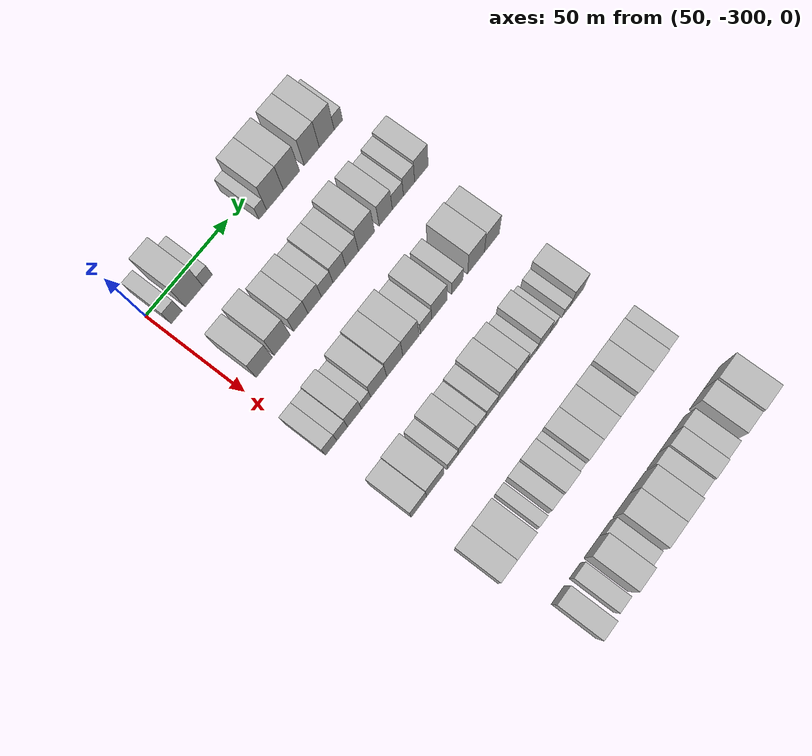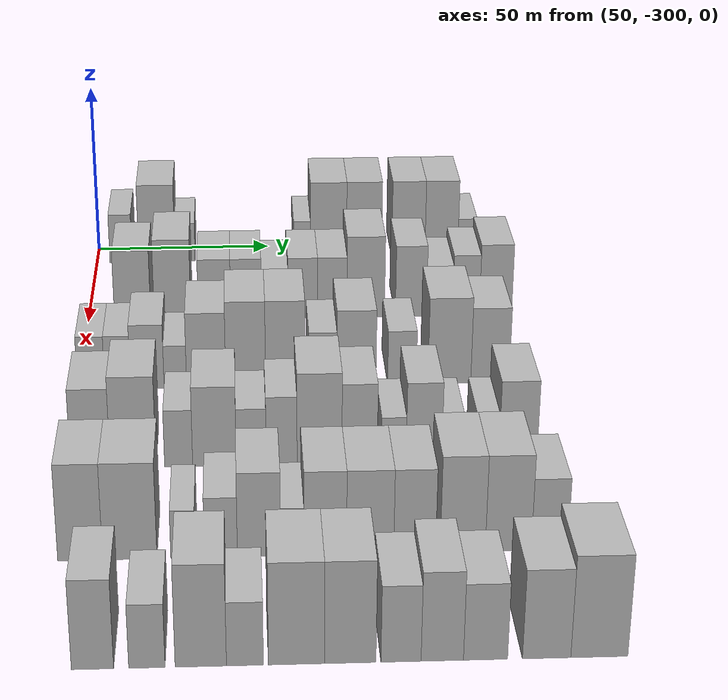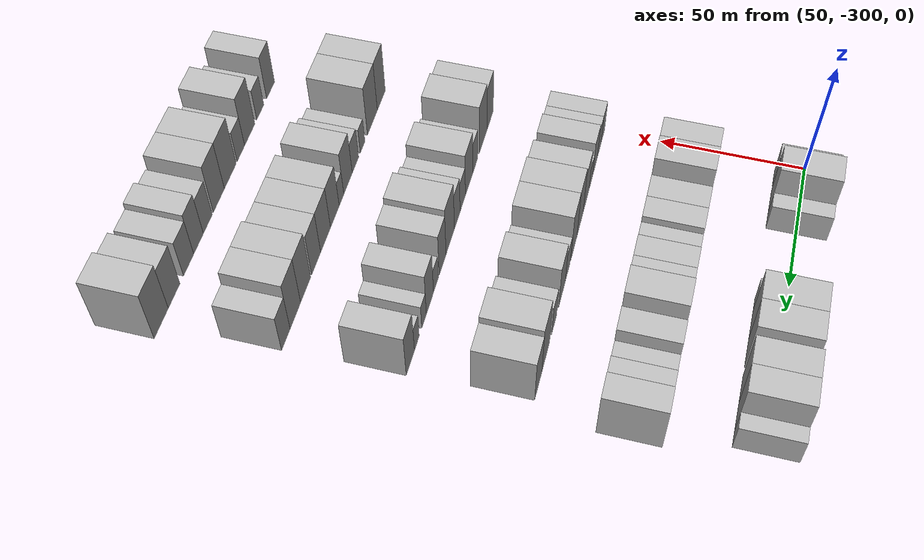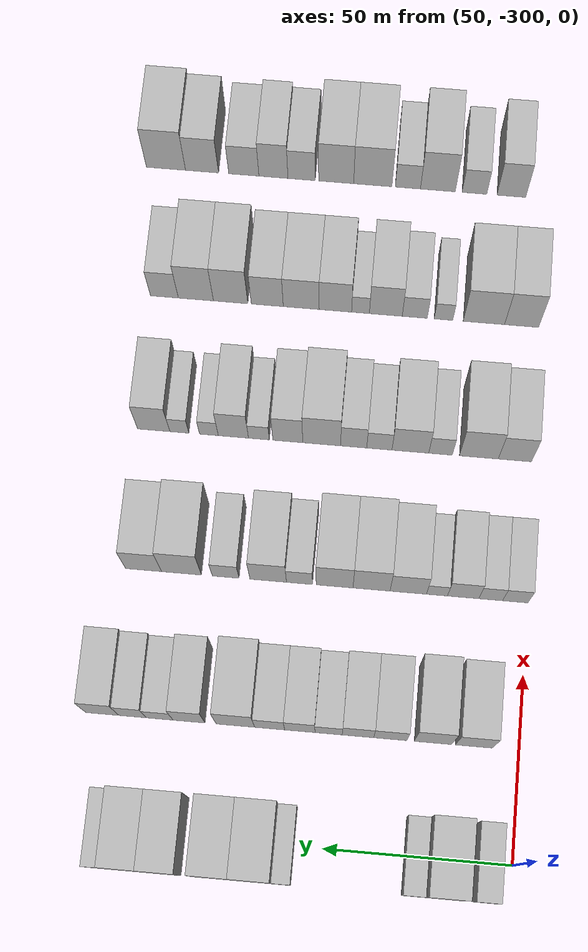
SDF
<sdf version="1.6">
 <world name="default">
  <model name="building_37">
   <static>1</static>
   <pose>50.0000 -293.0768 0 0.000000 0.000000 0.000000</pose>
   <link name="link">
    <pose>0 0 7.50 0 0 0</pose>
    <collision name="collision"><geometry><box><size>20.0000 6.4604 15.0000</size></box></geometry></collision>
    <visual name="visual">
     <cast_shadows>0</cast_shadows>
     <geometry><box><size>20.0000 6.4604 15.0000</size></box></geometry>
     <material>
      <script>
       <uri>model://HANNAS_wall/materials/scripts</uri>
       <uri>model://HANNAS_wall/materials/textures</uri>
       <name>vrc/HANNAS_wall</name>
      </script>
     </material>
    </visual>
   </link>
  </model>
  <model name="building_38">
   <static>1</static>
   <pose>50.0000 -282.5672 0 0.000000 0.000000 0.000000</pose>
   <link name="link">
    <pose>0 0 12.00 0 0 0</pose>
    <collision name="collision"><geometry><box><size>20.0000 10.5588 24.0000</size></box></geometry></collision>
    <visual name="visual">
     <cast_shadows>0</cast_shadows>
     <geometry><box><size>20.0000 10.5588 24.0000</size></box></geometry>
     <material>
      <script>
       <uri>model://HANNAS_wall/materials/scripts</uri>
       <uri>model://HANNAS_wall/materials/textures</uri>
       <name>vrc/HANNAS_wall</name>
      </script>
     </material>
    </visual>
   </link>
  </model>
  <model name="building_39">
   <static>1</static>
   <pose>50.0000 -274.3519 0 0.000000 0.000000 0.000000</pose>
   <link name="link">
    <pose>0 0 6.00 0 0 0</pose>
    <collision name="collision"><geometry><box><size>20.0000 5.8718 12.0000</size></box></geometry></collision>
    <visual name="visual">
     <cast_shadows>0</cast_shadows>
     <geometry><box><size>20.0000 5.8718 12.0000</size></box></geometry>
     <material>
      <script>
       <uri>model://HANNAS_wall/materials/scripts</uri>
       <uri>model://HANNAS_wall/materials/textures</uri>
       <name>vrc/HANNAS_wall</name>
      </script>
     </material>
    </visual>
   </link>
  </model>
  <model name="building_40">
   <static>1</static>
   <pose>50.0000 -240.0656 0 0.000000 0.000000 0.000000</pose>
   <link name="link">
    <pose>0 0 6.00 0 0 0</pose>
    <collision name="collision"><geometry><box><size>20.0000 4.9003 12.0000</size></box></geometry></collision>
    <visual name="visual">
     <cast_shadows>0</cast_shadows>
     <geometry><box><size>20.0000 4.9003 12.0000</size></box></geometry>
     <material>
      <script>
       <uri>model://HANNAS_wall/materials/scripts</uri>
       <uri>model://HANNAS_wall/materials/textures</uri>
       <name>vrc/HANNAS_wall</name>
      </script>
     </material>
    </visual>
   </link>
  </model>
  <model name="building_41">
   <static>1</static>
   <pose>50.0000 -232.3175 0 0.000000 0.000000 0.000000</pose>
   <link name="link">
    <pose>0 0 12.00 0 0 0</pose>
    <collision name="collision"><geometry><box><size>20.0000 10.5959 24.0000</size></box></geometry></collision>
    <visual name="visual">
     <cast_shadows>0</cast_shadows>
     <geometry><box><size>20.0000 10.5959 24.0000</size></box></geometry>
     <material>
      <script>
       <uri>model://HANNAS_wall/materials/scripts</uri>
       <uri>model://HANNAS_wall/materials/textures</uri>
       <name>vrc/HANNAS_wall</name>
      </script>
     </material>
    </visual>
   </link>
  </model>
  <model name="building_42">
   <static>1</static>
   <pose>50.0000 -221.8709 0 0.000000 0.000000 0.000000</pose>
   <link name="link">
    <pose>0 0 12.00 0 0 0</pose>
    <collision name="collision"><geometry><box><size>20.0000 10.2973 24.0000</size></box></geometry></collision>
    <visual name="visual">
     <cast_shadows>0</cast_shadows>
     <geometry><box><size>20.0000 10.2973 24.0000</size></box></geometry>
     <material>
      <script>
       <uri>model://HANNAS_wall/materials/scripts</uri>
       <uri>model://HANNAS_wall/materials/textures</uri>
       <name>vrc/HANNAS_wall</name>
      </script>
     </material>
    </visual>
   </link>
  </model>
  <model name="building_43">
   <static>1</static>
   <pose>50.0000 -208.8454 0 0.000000 0.000000 0.000000</pose>
   <link name="link">
    <pose>0 0 12.00 0 0 0</pose>
    <collision name="collision"><geometry><box><size>20.0000 9.7536 24.0000</size></box></geometry></collision>
    <visual name="visual">
     <cast_shadows>0</cast_shadows>
     <geometry><box><size>20.0000 9.7536 24.0000</size></box></geometry>
     <material>
      <script>
       <uri>model://HANNAS_wall/materials/scripts</uri>
       <uri>model://HANNAS_wall/materials/textures</uri>
       <name>vrc/HANNAS_wall</name>
      </script>
     </material>
    </visual>
   </link>
  </model>
  <model name="building_44">
   <static>1</static>
   <pose>50.0000 -199.1187 0 0.000000 0.000000 0.000000</pose>
   <link name="link">
    <pose>0 0 12.00 0 0 0</pose>
    <collision name="collision"><geometry><box><size>20.0000 9.6998 24.0000</size></box></geometry></collision>
    <visual name="visual">
     <cast_shadows>0</cast_shadows>
     <geometry><box><size>20.0000 9.6998 24.0000</size></box></geometry>
     <material>
      <script>
       <uri>model://HANNAS_wall/materials/scripts</uri>
       <uri>model://HANNAS_wall/materials/textures</uri>
       <name>vrc/HANNAS_wall</name>
      </script>
     </material>
    </visual>
   </link>
  </model>
  <model name="building_45">
   <static>1</static>
   <pose>50.0000 -191.5245 0 0.000000 0.000000 0.000000</pose>
   <link name="link">
    <pose>0 0 6.00 0 0 0</pose>
    <collision name="collision"><geometry><box><size>20.0000 5.4886 12.0000</size></box></geometry></collision>
    <visual name="visual">
     <cast_shadows>0</cast_shadows>
     <geometry><box><size>20.0000 5.4886 12.0000</size></box></geometry>
     <material>
      <script>
       <uri>model://HANNAS_wall/materials/scripts</uri>
       <uri>model://HANNAS_wall/materials/textures</uri>
       <name>vrc/HANNAS_wall</name>
      </script>
     </material>
    </visual>
   </link>
  </model>
  <model name="building_177">
   <static>1</static>
   <pose>90.0000 -287.9412 0 0.000000 0.000000 0.000000</pose>
   <link name="link">
    <pose>0 0 10.50 0 0 0</pose>
    <collision name="collision"><geometry><box><size>20.0000 9.8852 21.0000</size></box></geometry></collision>
    <visual name="visual">
     <cast_shadows>0</cast_shadows>
     <geometry><box><size>20.0000 9.8852 21.0000</size></box></geometry>
     <material>
      <script>
       <uri>model://HANNAS_wall/materials/scripts</uri>
       <uri>model://HANNAS_wall/materials/textures</uri>
       <name>vrc/HANNAS_wall</name>
      </script>
     </material>
    </visual>
   </link>
  </model>
  <model name="building_178">
   <static>1</static>
   <pose>90.0000 -276.9962 0 0.000000 0.000000 0.000000</pose>
   <link name="link">
    <pose>0 0 12.00 0 0 0</pose>
    <collision name="collision"><geometry><box><size>20.0000 10.0049 24.0000</size></box></geometry></collision>
    <visual name="visual">
     <cast_shadows>0</cast_shadows>
     <geometry><box><size>20.0000 10.0049 24.0000</size></box></geometry>
     <material>
      <script>
       <uri>model://HANNAS_wall/materials/scripts</uri>
       <uri>model://HANNAS_wall/materials/textures</uri>
       <name>vrc/HANNAS_wall</name>
      </script>
     </material>
    </visual>
   </link>
  </model>
  <model name="building_179">
   <static>1</static>
   <pose>90.0000 -265.5433 0 0.000000 0.000000 0.000000</pose>
   <link name="link">
    <pose>0 0 9.00 0 0 0</pose>
    <collision name="collision"><geometry><box><size>20.0000 8.9009 18.0000</size></box></geometry></collision>
    <visual name="visual">
     <cast_shadows>0</cast_shadows>
     <geometry><box><size>20.0000 8.9009 18.0000</size></box></geometry>
     <material>
      <script>
       <uri>model://HANNAS_wall/materials/scripts</uri>
       <uri>model://HANNAS_wall/materials/textures</uri>
       <name>vrc/HANNAS_wall</name>
      </script>
     </material>
    </visual>
   </link>
  </model>
  <model name="building_180">
   <static>1</static>
   <pose>90.0000 -256.8800 0 0.000000 0.000000 0.000000</pose>
   <link name="link">
    <pose>0 0 9.00 0 0 0</pose>
    <collision name="collision"><geometry><box><size>20.0000 8.4257 18.0000</size></box></geometry></collision>
    <visual name="visual">
     <cast_shadows>0</cast_shadows>
     <geometry><box><size>20.0000 8.4257 18.0000</size></box></geometry>
     <material>
      <script>
       <uri>model://HANNAS_wall/materials/scripts</uri>
       <uri>model://HANNAS_wall/materials/textures</uri>
       <name>vrc/HANNAS_wall</name>
      </script>
     </material>
    </visual>
   </link>
  </model>
  <model name="building_181">
   <static>1</static>
   <pose>90.0000 -249.0174 0 0.000000 0.000000 0.000000</pose>
   <link name="link">
    <pose>0 0 7.50 0 0 0</pose>
    <collision name="collision"><geometry><box><size>20.0000 7.2996 15.0000</size></box></geometry></collision>
    <visual name="visual">
     <cast_shadows>0</cast_shadows>
     <geometry><box><size>20.0000 7.2996 15.0000</size></box></geometry>
     <material>
      <script>
       <uri>model://HANNAS_wall/materials/scripts</uri>
       <uri>model://HANNAS_wall/materials/textures</uri>
       <name>vrc/HANNAS_wall</name>
      </script>
     </material>
    </visual>
   </link>
  </model>
  <model name="building_182">
   <static>1</static>
   <pose>90.0000 -241.3048 0 0.000000 0.000000 0.000000</pose>
   <link name="link">
    <pose>0 0 9.00 0 0 0</pose>
    <collision name="collision"><geometry><box><size>20.0000 8.1256 18.0000</size></box></geometry></collision>
    <visual name="visual">
     <cast_shadows>0</cast_shadows>
     <geometry><box><size>20.0000 8.1256 18.0000</size></box></geometry>
     <material>
      <script>
       <uri>model://HANNAS_wall/materials/scripts</uri>
       <uri>model://HANNAS_wall/materials/textures</uri>
       <name>vrc/HANNAS_wall</name>
      </script>
     </material>
    </visual>
   </link>
  </model>
  <model name="building_183">
   <static>1</static>
   <pose>90.0000 -233.2169 0 0.000000 0.000000 0.000000</pose>
   <link name="link">
    <pose>0 0 9.00 0 0 0</pose>
    <collision name="collision"><geometry><box><size>20.0000 8.0502 18.0000</size></box></geometry></collision>
    <visual name="visual">
     <cast_shadows>0</cast_shadows>
     <geometry><box><size>20.0000 8.0502 18.0000</size></box></geometry>
     <material>
      <script>
       <uri>model://HANNAS_wall/materials/scripts</uri>
       <uri>model://HANNAS_wall/materials/textures</uri>
       <name>vrc/HANNAS_wall</name>
      </script>
     </material>
    </visual>
   </link>
  </model>
  <model name="building_184">
   <static>1</static>
   <pose>90.0000 -224.0075 0 0.000000 0.000000 0.000000</pose>
   <link name="link">
    <pose>0 0 12.00 0 0 0</pose>
    <collision name="collision"><geometry><box><size>20.0000 10.3686 24.0000</size></box></geometry></collision>
    <visual name="visual">
     <cast_shadows>0</cast_shadows>
     <geometry><box><size>20.0000 10.3686 24.0000</size></box></geometry>
     <material>
      <script>
       <uri>model://HANNAS_wall/materials/scripts</uri>
       <uri>model://HANNAS_wall/materials/textures</uri>
       <name>vrc/HANNAS_wall</name>
      </script>
     </material>
    </visual>
   </link>
  </model>
  <model name="building_185">
   <static>1</static>
   <pose>90.0000 -211.5297 0 0.000000 0.000000 0.000000</pose>
   <link name="link">
    <pose>0 0 10.50 0 0 0</pose>
    <collision name="collision"><geometry><box><size>20.0000 8.5871 21.0000</size></box></geometry></collision>
    <visual name="visual">
     <cast_shadows>0</cast_shadows>
     <geometry><box><size>20.0000 8.5871 21.0000</size></box></geometry>
     <material>
      <script>
       <uri>model://HANNAS_wall/materials/scripts</uri>
       <uri>model://HANNAS_wall/materials/textures</uri>
       <name>vrc/HANNAS_wall</name>
      </script>
     </material>
    </visual>
   </link>
  </model>
  <model name="building_186">
   <static>1</static>
   <pose>90.0000 -203.5956 0 0.000000 0.000000 0.000000</pose>
   <link name="link">
    <pose>0 0 7.50 0 0 0</pose>
    <collision name="collision"><geometry><box><size>20.0000 7.2810 15.0000</size></box></geometry></collision>
    <visual name="visual">
     <cast_shadows>0</cast_shadows>
     <geometry><box><size>20.0000 7.2810 15.0000</size></box></geometry>
     <material>
      <script>
       <uri>model://HANNAS_wall/materials/scripts</uri>
       <uri>model://HANNAS_wall/materials/textures</uri>
       <name>vrc/HANNAS_wall</name>
      </script>
     </material>
    </visual>
   </link>
  </model>
  <model name="building_187">
   <static>1</static>
   <pose>90.0000 -196.2779 0 0.000000 0.000000 0.000000</pose>
   <link name="link">
    <pose>0 0 9.00 0 0 0</pose>
    <collision name="collision"><geometry><box><size>20.0000 7.3544 18.0000</size></box></geometry></collision>
    <visual name="visual">
     <cast_shadows>0</cast_shadows>
     <geometry><box><size>20.0000 7.3544 18.0000</size></box></geometry>
     <material>
      <script>
       <uri>model://HANNAS_wall/materials/scripts</uri>
       <uri>model://HANNAS_wall/materials/textures</uri>
       <name>vrc/HANNAS_wall</name>
      </script>
     </material>
    </visual>
   </link>
  </model>
  <model name="building_188">
   <static>1</static>
   <pose>90.0000 -188.1308 0 0.000000 0.000000 0.000000</pose>
   <link name="link">
    <pose>0 0 10.50 0 0 0</pose>
    <collision name="collision"><geometry><box><size>20.0000 8.9399 21.0000</size></box></geometry></collision>
    <visual name="visual">
     <cast_shadows>0</cast_shadows>
     <geometry><box><size>20.0000 8.9399 21.0000</size></box></geometry>
     <material>
      <script>
       <uri>model://HANNAS_wall/materials/scripts</uri>
       <uri>model://HANNAS_wall/materials/textures</uri>
       <name>vrc/HANNAS_wall</name>
      </script>
     </material>
    </visual>
   </link>
  </model>
  <model name="building_316">
   <static>1</static>
   <pose>130.0000 -296.7815 0 0.000000 0.000000 0.000000</pose>
   <link name="link">
    <pose>0 0 7.50 0 0 0</pose>
    <collision name="collision"><geometry><box><size>20.0000 6.9578 15.0000</size></box></geometry></collision>
    <visual name="visual">
     <cast_shadows>0</cast_shadows>
     <geometry><box><size>20.0000 6.9578 15.0000</size></box></geometry>
     <material>
      <script>
       <uri>model://HANNAS_wall/materials/scripts</uri>
       <uri>model://HANNAS_wall/materials/textures</uri>
       <name>vrc/HANNAS_wall</name>
      </script>
     </material>
    </visual>
   </link>
  </model>
  <model name="building_317">
   <static>1</static>
   <pose>130.0000 -290.0409 0 0.000000 0.000000 0.000000</pose>
   <link name="link">
    <pose>0 0 7.50 0 0 0</pose>
    <collision name="collision"><geometry><box><size>20.0000 6.5235 15.0000</size></box></geometry></collision>
    <visual name="visual">
     <cast_shadows>0</cast_shadows>
     <geometry><box><size>20.0000 6.5235 15.0000</size></box></geometry>
     <material>
      <script>
       <uri>model://HANNAS_wall/materials/scripts</uri>
       <uri>model://HANNAS_wall/materials/textures</uri>
       <name>vrc/HANNAS_wall</name>
      </script>
     </material>
    </visual>
   </link>
  </model>
  <model name="building_318">
   <static>1</static>
   <pose>130.0000 -282.4900 0 0.000000 0.000000 0.000000</pose>
   <link name="link">
    <pose>0 0 9.00 0 0 0</pose>
    <collision name="collision"><geometry><box><size>20.0000 8.5782 18.0000</size></box></geometry></collision>
    <visual name="visual">
     <cast_shadows>0</cast_shadows>
     <geometry><box><size>20.0000 8.5782 18.0000</size></box></geometry>
     <material>
      <script>
       <uri>model://HANNAS_wall/materials/scripts</uri>
       <uri>model://HANNAS_wall/materials/textures</uri>
       <name>vrc/HANNAS_wall</name>
      </script>
     </material>
    </visual>
   </link>
  </model>
  <model name="building_319">
   <static>1</static>
   <pose>130.0000 -275.3280 0 0.000000 0.000000 0.000000</pose>
   <link name="link">
    <pose>0 0 6.00 0 0 0</pose>
    <collision name="collision"><geometry><box><size>20.0000 5.7458 12.0000</size></box></geometry></collision>
    <visual name="visual">
     <cast_shadows>0</cast_shadows>
     <geometry><box><size>20.0000 5.7458 12.0000</size></box></geometry>
     <material>
      <script>
       <uri>model://HANNAS_wall/materials/scripts</uri>
       <uri>model://HANNAS_wall/materials/textures</uri>
       <name>vrc/HANNAS_wall</name>
      </script>
     </material>
    </visual>
   </link>
  </model>
  <model name="building_320">
   <static>1</static>
   <pose>130.0000 -267.4530 0 0.000000 0.000000 0.000000</pose>
   <link name="link">
    <pose>0 0 10.50 0 0 0</pose>
    <collision name="collision"><geometry><box><size>20.0000 10.0041 21.0000</size></box></geometry></collision>
    <visual name="visual">
     <cast_shadows>0</cast_shadows>
     <geometry><box><size>20.0000 10.0041 21.0000</size></box></geometry>
     <material>
      <script>
       <uri>model://HANNAS_wall/materials/scripts</uri>
       <uri>model://HANNAS_wall/materials/textures</uri>
       <name>vrc/HANNAS_wall</name>
      </script>
     </material>
    </visual>
   </link>
  </model>
  <model name="building_321">
   <static>1</static>
   <pose>130.0000 -257.3685 0 0.000000 0.000000 0.000000</pose>
   <link name="link">
    <pose>0 0 12.00 0 0 0</pose>
    <collision name="collision"><geometry><box><size>20.0000 10.1650 24.0000</size></box></geometry></collision>
    <visual name="visual">
     <cast_shadows>0</cast_shadows>
     <geometry><box><size>20.0000 10.1650 24.0000</size></box></geometry>
     <material>
      <script>
       <uri>model://HANNAS_wall/materials/scripts</uri>
       <uri>model://HANNAS_wall/materials/textures</uri>
       <name>vrc/HANNAS_wall</name>
      </script>
     </material>
    </visual>
   </link>
  </model>
  <model name="building_322">
   <static>1</static>
   <pose>130.0000 -247.2300 0 0.000000 0.000000 0.000000</pose>
   <link name="link">
    <pose>0 0 12.00 0 0 0</pose>
    <collision name="collision"><geometry><box><size>20.0000 10.1119 24.0000</size></box></geometry></collision>
    <visual name="visual">
     <cast_shadows>0</cast_shadows>
     <geometry><box><size>20.0000 10.1119 24.0000</size></box></geometry>
     <material>
      <script>
       <uri>model://HANNAS_wall/materials/scripts</uri>
       <uri>model://HANNAS_wall/materials/textures</uri>
       <name>vrc/HANNAS_wall</name>
      </script>
     </material>
    </visual>
   </link>
  </model>
  <model name="building_323">
   <static>1</static>
   <pose>130.0000 -237.5953 0 0.000000 0.000000 0.000000</pose>
   <link name="link">
    <pose>0 0 7.50 0 0 0</pose>
    <collision name="collision"><geometry><box><size>20.0000 7.1576 15.0000</size></box></geometry></collision>
    <visual name="visual">
     <cast_shadows>0</cast_shadows>
     <geometry><box><size>20.0000 7.1576 15.0000</size></box></geometry>
     <material>
      <script>
       <uri>model://HANNAS_wall/materials/scripts</uri>
       <uri>model://HANNAS_wall/materials/textures</uri>
       <name>vrc/HANNAS_wall</name>
      </script>
     </material>
    </visual>
   </link>
  </model>
  <model name="building_324">
   <static>1</static>
   <pose>130.0000 -228.9932 0 0.000000 0.000000 0.000000</pose>
   <link name="link">
    <pose>0 0 10.50 0 0 0</pose>
    <collision name="collision"><geometry><box><size>20.0000 10.0466 21.0000</size></box></geometry></collision>
    <visual name="visual">
     <cast_shadows>0</cast_shadows>
     <geometry><box><size>20.0000 10.0466 21.0000</size></box></geometry>
     <material>
      <script>
       <uri>model://HANNAS_wall/materials/scripts</uri>
       <uri>model://HANNAS_wall/materials/textures</uri>
       <name>vrc/HANNAS_wall</name>
      </script>
     </material>
    </visual>
   </link>
  </model>
  <model name="building_325">
   <static>1</static>
   <pose>130.0000 -217.2859 0 0.000000 0.000000 0.000000</pose>
   <link name="link">
    <pose>0 0 7.50 0 0 0</pose>
    <collision name="collision"><geometry><box><size>20.0000 7.3680 15.0000</size></box></geometry></collision>
    <visual name="visual">
     <cast_shadows>0</cast_shadows>
     <geometry><box><size>20.0000 7.3680 15.0000</size></box></geometry>
     <material>
      <script>
       <uri>model://HANNAS_wall/materials/scripts</uri>
       <uri>model://HANNAS_wall/materials/textures</uri>
       <name>vrc/HANNAS_wall</name>
      </script>
     </material>
    </visual>
   </link>
  </model>
  <model name="building_326">
   <static>1</static>
   <pose>130.0000 -205.0780 0 0.000000 0.000000 0.000000</pose>
   <link name="link">
    <pose>0 0 12.00 0 0 0</pose>
    <collision name="collision"><geometry><box><size>20.0000 11.0477 24.0000</size></box></geometry></collision>
    <visual name="visual">
     <cast_shadows>0</cast_shadows>
     <geometry><box><size>20.0000 11.0477 24.0000</size></box></geometry>
     <material>
      <script>
       <uri>model://HANNAS_wall/materials/scripts</uri>
       <uri>model://HANNAS_wall/materials/textures</uri>
       <name>vrc/HANNAS_wall</name>
      </script>
     </material>
    </visual>
   </link>
  </model>
  <model name="building_327">
   <static>1</static>
   <pose>130.0000 -194.6005 0 0.000000 0.000000 0.000000</pose>
   <link name="link">
    <pose>0 0 10.50 0 0 0</pose>
    <collision name="collision"><geometry><box><size>20.0000 9.9073 21.0000</size></box></geometry></collision>
    <visual name="visual">
     <cast_shadows>0</cast_shadows>
     <geometry><box><size>20.0000 9.9073 21.0000</size></box></geometry>
     <material>
      <script>
       <uri>model://HANNAS_wall/materials/scripts</uri>
       <uri>model://HANNAS_wall/materials/textures</uri>
       <name>vrc/HANNAS_wall</name>
      </script>
     </material>
    </visual>
   </link>
  </model>
  <model name="building_452">
   <static>1</static>
   <pose>170.0000 -294.4539 0 0.000000 0.000000 0.000000</pose>
   <link name="link">
    <pose>0 0 10.50 0 0 0</pose>
    <collision name="collision"><geometry><box><size>20.0000 9.3459 21.0000</size></box></geometry></collision>
    <visual name="visual">
     <cast_shadows>0</cast_shadows>
     <geometry><box><size>20.0000 9.3459 21.0000</size></box></geometry>
     <material>
      <script>
       <uri>model://HANNAS_wall/materials/scripts</uri>
       <uri>model://HANNAS_wall/materials/textures</uri>
       <name>vrc/HANNAS_wall</name>
      </script>
     </material>
    </visual>
   </link>
  </model>
  <model name="building_453">
   <static>1</static>
   <pose>170.0000 -284.3573 0 0.000000 0.000000 0.000000</pose>
   <link name="link">
    <pose>0 0 12.00 0 0 0</pose>
    <collision name="collision"><geometry><box><size>20.0000 10.8474 24.0000</size></box></geometry></collision>
    <visual name="visual">
     <cast_shadows>0</cast_shadows>
     <geometry><box><size>20.0000 10.8474 24.0000</size></box></geometry>
     <material>
      <script>
       <uri>model://HANNAS_wall/materials/scripts</uri>
       <uri>model://HANNAS_wall/materials/textures</uri>
       <name>vrc/HANNAS_wall</name>
      </script>
     </material>
    </visual>
   </link>
  </model>
  <model name="building_454">
   <static>1</static>
   <pose>170.0000 -273.6152 0 0.000000 0.000000 0.000000</pose>
   <link name="link">
    <pose>0 0 7.50 0 0 0</pose>
    <collision name="collision"><geometry><box><size>20.0000 6.6368 15.0000</size></box></geometry></collision>
    <visual name="visual">
     <cast_shadows>0</cast_shadows>
     <geometry><box><size>20.0000 6.6368 15.0000</size></box></geometry>
     <material>
      <script>
       <uri>model://HANNAS_wall/materials/scripts</uri>
       <uri>model://HANNAS_wall/materials/textures</uri>
       <name>vrc/HANNAS_wall</name>
      </script>
     </material>
    </visual>
   </link>
  </model>
  <model name="building_455">
   <static>1</static>
   <pose>170.0000 -265.1375 0 0.000000 0.000000 0.000000</pose>
   <link name="link">
    <pose>0 0 10.50 0 0 0</pose>
    <collision name="collision"><geometry><box><size>20.0000 10.3187 21.0000</size></box></geometry></collision>
    <visual name="visual">
     <cast_shadows>0</cast_shadows>
     <geometry><box><size>20.0000 10.3187 21.0000</size></box></geometry>
     <material>
      <script>
       <uri>model://HANNAS_wall/materials/scripts</uri>
       <uri>model://HANNAS_wall/materials/textures</uri>
       <name>vrc/HANNAS_wall</name>
      </script>
     </material>
    </visual>
   </link>
  </model>
  <model name="building_456">
   <static>1</static>
   <pose>170.0000 -256.4335 0 0.000000 0.000000 0.000000</pose>
   <link name="link">
    <pose>0 0 7.50 0 0 0</pose>
    <collision name="collision"><geometry><box><size>20.0000 7.0892 15.0000</size></box></geometry></collision>
    <visual name="visual">
     <cast_shadows>0</cast_shadows>
     <geometry><box><size>20.0000 7.0892 15.0000</size></box></geometry>
     <material>
      <script>
       <uri>model://HANNAS_wall/materials/scripts</uri>
       <uri>model://HANNAS_wall/materials/textures</uri>
       <name>vrc/HANNAS_wall</name>
      </script>
     </material>
    </visual>
   </link>
  </model>
  <model name="building_457">
   <static>1</static>
   <pose>170.0000 -249.2142 0 0.000000 0.000000 0.000000</pose>
   <link name="link">
    <pose>0 0 9.00 0 0 0</pose>
    <collision name="collision"><geometry><box><size>20.0000 7.3494 18.0000</size></box></geometry></collision>
    <visual name="visual">
     <cast_shadows>0</cast_shadows>
     <geometry><box><size>20.0000 7.3494 18.0000</size></box></geometry>
     <material>
      <script>
       <uri>model://HANNAS_wall/materials/scripts</uri>
       <uri>model://HANNAS_wall/materials/textures</uri>
       <name>vrc/HANNAS_wall</name>
      </script>
     </material>
    </visual>
   </link>
  </model>
  <model name="building_458">
   <static>1</static>
   <pose>170.0000 -240.2193 0 0.000000 0.000000 0.000000</pose>
   <link name="link">
    <pose>0 0 12.00 0 0 0</pose>
    <collision name="collision"><geometry><box><size>20.0000 10.6404 24.0000</size></box></geometry></collision>
    <visual name="visual">
     <cast_shadows>0</cast_shadows>
     <geometry><box><size>20.0000 10.6404 24.0000</size></box></geometry>
     <material>
      <script>
       <uri>model://HANNAS_wall/materials/scripts</uri>
       <uri>model://HANNAS_wall/materials/textures</uri>
       <name>vrc/HANNAS_wall</name>
      </script>
     </material>
    </visual>
   </link>
  </model>
  <model name="building_459">
   <static>1</static>
   <pose>170.0000 -230.6918 0 0.000000 0.000000 0.000000</pose>
   <link name="link">
    <pose>0 0 10.50 0 0 0</pose>
    <collision name="collision"><geometry><box><size>20.0000 8.4146 21.0000</size></box></geometry></collision>
    <visual name="visual">
     <cast_shadows>0</cast_shadows>
     <geometry><box><size>20.0000 8.4146 21.0000</size></box></geometry>
     <material>
      <script>
       <uri>model://HANNAS_wall/materials/scripts</uri>
       <uri>model://HANNAS_wall/materials/textures</uri>
       <name>vrc/HANNAS_wall</name>
      </script>
     </material>
    </visual>
   </link>
  </model>
  <model name="building_460">
   <static>1</static>
   <pose>170.0000 -222.5442 0 0.000000 0.000000 0.000000</pose>
   <link name="link">
    <pose>0 0 6.00 0 0 0</pose>
    <collision name="collision"><geometry><box><size>20.0000 5.8805 12.0000</size></box></geometry></collision>
    <visual name="visual">
     <cast_shadows>0</cast_shadows>
     <geometry><box><size>20.0000 5.8805 12.0000</size></box></geometry>
     <material>
      <script>
       <uri>model://HANNAS_wall/materials/scripts</uri>
       <uri>model://HANNAS_wall/materials/textures</uri>
       <name>vrc/HANNAS_wall</name>
      </script>
     </material>
    </visual>
   </link>
  </model>
  <model name="building_461">
   <static>1</static>
   <pose>170.0000 -215.3421 0 0.000000 0.000000 0.000000</pose>
   <link name="link">
    <pose>0 0 10.50 0 0 0</pose>
    <collision name="collision"><geometry><box><size>20.0000 8.5237 21.0000</size></box></geometry></collision>
    <visual name="visual">
     <cast_shadows>0</cast_shadows>
     <geometry><box><size>20.0000 8.5237 21.0000</size></box></geometry>
     <material>
      <script>
       <uri>model://HANNAS_wall/materials/scripts</uri>
       <uri>model://HANNAS_wall/materials/textures</uri>
       <name>vrc/HANNAS_wall</name>
      </script>
     </material>
    </visual>
   </link>
  </model>
  <model name="building_462">
   <static>1</static>
   <pose>170.0000 -208.4375 0 0.000000 0.000000 0.000000</pose>
   <link name="link">
    <pose>0 0 6.00 0 0 0</pose>
    <collision name="collision"><geometry><box><size>20.0000 5.2854 12.0000</size></box></geometry></collision>
    <visual name="visual">
     <cast_shadows>0</cast_shadows>
     <geometry><box><size>20.0000 5.2854 12.0000</size></box></geometry>
     <material>
      <script>
       <uri>model://HANNAS_wall/materials/scripts</uri>
       <uri>model://HANNAS_wall/materials/textures</uri>
       <name>vrc/HANNAS_wall</name>
      </script>
     </material>
    </visual>
   </link>
  </model>
  <model name="building_463">
   <static>1</static>
   <pose>170.0000 -200.1067 0 0.000000 0.000000 0.000000</pose>
   <link name="link">
    <pose>0 0 6.00 0 0 0</pose>
    <collision name="collision"><geometry><box><size>20.0000 5.3762 12.0000</size></box></geometry></collision>
    <visual name="visual">
     <cast_shadows>0</cast_shadows>
     <geometry><box><size>20.0000 5.3762 12.0000</size></box></geometry>
     <material>
      <script>
       <uri>model://HANNAS_wall/materials/scripts</uri>
       <uri>model://HANNAS_wall/materials/textures</uri>
       <name>vrc/HANNAS_wall</name>
      </script>
     </material>
    </visual>
   </link>
  </model>
  <model name="building_464">
   <static>1</static>
   <pose>170.0000 -192.8536 0 0.000000 0.000000 0.000000</pose>
   <link name="link">
    <pose>0 0 10.50 0 0 0</pose>
    <collision name="collision"><geometry><box><size>20.0000 9.1302 21.0000</size></box></geometry></collision>
    <visual name="visual">
     <cast_shadows>0</cast_shadows>
     <geometry><box><size>20.0000 9.1302 21.0000</size></box></geometry>
     <material>
      <script>
       <uri>model://HANNAS_wall/materials/scripts</uri>
       <uri>model://HANNAS_wall/materials/textures</uri>
       <name>vrc/HANNAS_wall</name>
      </script>
     </material>
    </visual>
   </link>
  </model>
  <model name="building_591">
   <static>1</static>
   <pose>210.0000 -294.1714 0 0.000000 0.000000 0.000000</pose>
   <link name="link">
    <pose>0 0 12.00 0 0 0</pose>
    <collision name="collision"><geometry><box><size>20.0000 9.7573 24.0000</size></box></geometry></collision>
    <visual name="visual">
     <cast_shadows>0</cast_shadows>
     <geometry><box><size>20.0000 9.7573 24.0000</size></box></geometry>
     <material>
      <script>
       <uri>model://HANNAS_wall/materials/scripts</uri>
       <uri>model://HANNAS_wall/materials/textures</uri>
       <name>vrc/HANNAS_wall</name>
      </script>
     </material>
    </visual>
   </link>
  </model>
  <model name="building_592">
   <static>1</static>
   <pose>210.0000 -283.3725 0 0.000000 0.000000 0.000000</pose>
   <link name="link">
    <pose>0 0 12.00 0 0 0</pose>
    <collision name="collision"><geometry><box><size>20.0000 11.8405 24.0000</size></box></geometry></collision>
    <visual name="visual">
     <cast_shadows>0</cast_shadows>
     <geometry><box><size>20.0000 11.8405 24.0000</size></box></geometry>
     <material>
      <script>
       <uri>model://HANNAS_wall/materials/scripts</uri>
       <uri>model://HANNAS_wall/materials/textures</uri>
       <name>vrc/HANNAS_wall</name>
      </script>
     </material>
    </visual>
   </link>
  </model>
  <model name="building_593">
   <static>1</static>
   <pose>210.0000 -271.7810 0 0.000000 0.000000 0.000000</pose>
   <link name="link">
    <pose>0 0 6.00 0 0 0</pose>
    <collision name="collision"><geometry><box><size>20.0000 5.3424 12.0000</size></box></geometry></collision>
    <visual name="visual">
     <cast_shadows>0</cast_shadows>
     <geometry><box><size>20.0000 5.3424 12.0000</size></box></geometry>
     <material>
      <script>
       <uri>model://HANNAS_wall/materials/scripts</uri>
       <uri>model://HANNAS_wall/materials/textures</uri>
       <name>vrc/HANNAS_wall</name>
      </script>
     </material>
    </visual>
   </link>
  </model>
  <model name="building_594">
   <static>1</static>
   <pose>210.0000 -263.5139 0 0.000000 0.000000 0.000000</pose>
   <link name="link">
    <pose>0 0 7.50 0 0 0</pose>
    <collision name="collision"><geometry><box><size>20.0000 7.1918 15.0000</size></box></geometry></collision>
    <visual name="visual">
     <cast_shadows>0</cast_shadows>
     <geometry><box><size>20.0000 7.1918 15.0000</size></box></geometry>
     <material>
      <script>
       <uri>model://HANNAS_wall/materials/scripts</uri>
       <uri>model://HANNAS_wall/materials/textures</uri>
       <name>vrc/HANNAS_wall</name>
      </script>
     </material>
    </visual>
   </link>
  </model>
  <model name="building_595">
   <static>1</static>
   <pose>210.0000 -255.1955 0 0.000000 0.000000 0.000000</pose>
   <link name="link">
    <pose>0 0 10.50 0 0 0</pose>
    <collision name="collision"><geometry><box><size>20.0000 9.4451 21.0000</size></box></geometry></collision>
    <visual name="visual">
     <cast_shadows>0</cast_shadows>
     <geometry><box><size>20.0000 9.4451 21.0000</size></box></geometry>
     <material>
      <script>
       <uri>model://HANNAS_wall/materials/scripts</uri>
       <uri>model://HANNAS_wall/materials/textures</uri>
       <name>vrc/HANNAS_wall</name>
      </script>
     </material>
    </visual>
   </link>
  </model>
  <model name="building_596">
   <static>1</static>
   <pose>210.0000 -247.9176 0 0.000000 0.000000 0.000000</pose>
   <link name="link">
    <pose>0 0 6.00 0 0 0</pose>
    <collision name="collision"><geometry><box><size>20.0000 5.1105 12.0000</size></box></geometry></collision>
    <visual name="visual">
     <cast_shadows>0</cast_shadows>
     <geometry><box><size>20.0000 5.1105 12.0000</size></box></geometry>
     <material>
      <script>
       <uri>model://HANNAS_wall/materials/scripts</uri>
       <uri>model://HANNAS_wall/materials/textures</uri>
       <name>vrc/HANNAS_wall</name>
      </script>
     </material>
    </visual>
   </link>
  </model>
  <model name="building_597">
   <static>1</static>
   <pose>210.0000 -240.6998 0 0.000000 0.000000 0.000000</pose>
   <link name="link">
    <pose>0 0 10.50 0 0 0</pose>
    <collision name="collision"><geometry><box><size>20.0000 9.3251 21.0000</size></box></geometry></collision>
    <visual name="visual">
     <cast_shadows>0</cast_shadows>
     <geometry><box><size>20.0000 9.3251 21.0000</size></box></geometry>
     <material>
      <script>
       <uri>model://HANNAS_wall/materials/scripts</uri>
       <uri>model://HANNAS_wall/materials/textures</uri>
       <name>vrc/HANNAS_wall</name>
      </script>
     </material>
    </visual>
   </link>
  </model>
  <model name="building_598">
   <static>1</static>
   <pose>210.0000 -230.8575 0 0.000000 0.000000 0.000000</pose>
   <link name="link">
    <pose>0 0 10.50 0 0 0</pose>
    <collision name="collision"><geometry><box><size>20.0000 10.3594 21.0000</size></box></geometry></collision>
    <visual name="visual">
     <cast_shadows>0</cast_shadows>
     <geometry><box><size>20.0000 10.3594 21.0000</size></box></geometry>
     <material>
      <script>
       <uri>model://HANNAS_wall/materials/scripts</uri>
       <uri>model://HANNAS_wall/materials/textures</uri>
       <name>vrc/HANNAS_wall</name>
      </script>
     </material>
    </visual>
   </link>
  </model>
  <model name="building_599">
   <static>1</static>
   <pose>210.0000 -221.0710 0 0.000000 0.000000 0.000000</pose>
   <link name="link">
    <pose>0 0 10.50 0 0 0</pose>
    <collision name="collision"><geometry><box><size>20.0000 9.2137 21.0000</size></box></geometry></collision>
    <visual name="visual">
     <cast_shadows>0</cast_shadows>
     <geometry><box><size>20.0000 9.2137 21.0000</size></box></geometry>
     <material>
      <script>
       <uri>model://HANNAS_wall/materials/scripts</uri>
       <uri>model://HANNAS_wall/materials/textures</uri>
       <name>vrc/HANNAS_wall</name>
      </script>
     </material>
    </visual>
   </link>
  </model>
  <model name="building_600">
   <static>1</static>
   <pose>210.0000 -210.4935 0 0.000000 0.000000 0.000000</pose>
   <link name="link">
    <pose>0 0 12.00 0 0 0</pose>
    <collision name="collision"><geometry><box><size>20.0000 9.9412 24.0000</size></box></geometry></collision>
    <visual name="visual">
     <cast_shadows>0</cast_shadows>
     <geometry><box><size>20.0000 9.9412 24.0000</size></box></geometry>
     <material>
      <script>
       <uri>model://HANNAS_wall/materials/scripts</uri>
       <uri>model://HANNAS_wall/materials/textures</uri>
       <name>vrc/HANNAS_wall</name>
      </script>
     </material>
    </visual>
   </link>
  </model>
  <model name="building_601">
   <static>1</static>
   <pose>210.0000 -200.4464 0 0.000000 0.000000 0.000000</pose>
   <link name="link">
    <pose>0 0 12.00 0 0 0</pose>
    <collision name="collision"><geometry><box><size>20.0000 10.1529 24.0000</size></box></geometry></collision>
    <visual name="visual">
     <cast_shadows>0</cast_shadows>
     <geometry><box><size>20.0000 10.1529 24.0000</size></box></geometry>
     <material>
      <script>
       <uri>model://HANNAS_wall/materials/scripts</uri>
       <uri>model://HANNAS_wall/materials/textures</uri>
       <name>vrc/HANNAS_wall</name>
      </script>
     </material>
    </visual>
   </link>
  </model>
  <model name="building_602">
   <static>1</static>
   <pose>210.0000 -191.3460 0 0.000000 0.000000 0.000000</pose>
   <link name="link">
    <pose>0 0 9.00 0 0 0</pose>
    <collision name="collision"><geometry><box><size>20.0000 8.0480 18.0000</size></box></geometry></collision>
    <visual name="visual">
     <cast_shadows>0</cast_shadows>
     <geometry><box><size>20.0000 8.0480 18.0000</size></box></geometry>
     <material>
      <script>
       <uri>model://HANNAS_wall/materials/scripts</uri>
       <uri>model://HANNAS_wall/materials/textures</uri>
       <name>vrc/HANNAS_wall</name>
      </script>
     </material>
    </visual>
   </link>
  </model>
  <model name="building_727">
   <static>1</static>
   <pose>250.0000 -289.0173 0 0.000000 0.000000 0.000000</pose>
   <link name="link">
    <pose>0 0 10.50 0 0 0</pose>
    <collision name="collision"><geometry><box><size>20.0000 8.4076 21.0000</size></box></geometry></collision>
    <visual name="visual">
     <cast_shadows>0</cast_shadows>
     <geometry><box><size>20.0000 8.4076 21.0000</size></box></geometry>
     <material>
      <script>
       <uri>model://HANNAS_wall/materials/scripts</uri>
       <uri>model://HANNAS_wall/materials/textures</uri>
       <name>vrc/HANNAS_wall</name>
      </script>
     </material>
    </visual>
   </link>
  </model>
  <model name="building_728">
   <static>1</static>
   <pose>250.0000 -278.1902 0 0.000000 0.000000 0.000000</pose>
   <link name="link">
    <pose>0 0 7.50 0 0 0</pose>
    <collision name="collision"><geometry><box><size>20.0000 7.2465 15.0000</size></box></geometry></collision>
    <visual name="visual">
     <cast_shadows>0</cast_shadows>
     <geometry><box><size>20.0000 7.2465 15.0000</size></box></geometry>
     <material>
      <script>
       <uri>model://HANNAS_wall/materials/scripts</uri>
       <uri>model://HANNAS_wall/materials/textures</uri>
       <name>vrc/HANNAS_wall</name>
      </script>
     </material>
    </visual>
   </link>
  </model>
  <model name="building_729">
   <static>1</static>
   <pose>250.0000 -267.4450 0 0.000000 0.000000 0.000000</pose>
   <link name="link">
    <pose>0 0 12.00 0 0 0</pose>
    <collision name="collision"><geometry><box><size>20.0000 10.2440 24.0000</size></box></geometry></collision>
    <visual name="visual">
     <cast_shadows>0</cast_shadows>
     <geometry><box><size>20.0000 10.2440 24.0000</size></box></geometry>
     <material>
      <script>
       <uri>model://HANNAS_wall/materials/scripts</uri>
       <uri>model://HANNAS_wall/materials/textures</uri>
       <name>vrc/HANNAS_wall</name>
      </script>
     </material>
    </visual>
   </link>
  </model>
  <model name="building_730">
   <static>1</static>
   <pose>250.0000 -258.6304 0 0.000000 0.000000 0.000000</pose>
   <link name="link">
    <pose>0 0 7.50 0 0 0</pose>
    <collision name="collision"><geometry><box><size>20.0000 7.3852 15.0000</size></box></geometry></collision>
    <visual name="visual">
     <cast_shadows>0</cast_shadows>
     <geometry><box><size>20.0000 7.3852 15.0000</size></box></geometry>
     <material>
      <script>
       <uri>model://HANNAS_wall/materials/scripts</uri>
       <uri>model://HANNAS_wall/materials/textures</uri>
       <name>vrc/HANNAS_wall</name>
      </script>
     </material>
    </visual>
   </link>
  </model>
  <model name="building_731">
   <static>1</static>
   <pose>250.0000 -248.3224 0 0.000000 0.000000 0.000000</pose>
   <link name="link">
    <pose>0 0 12.00 0 0 0</pose>
    <collision name="collision"><geometry><box><size>20.0000 11.2308 24.0000</size></box></geometry></collision>
    <visual name="visual">
     <cast_shadows>0</cast_shadows>
     <geometry><box><size>20.0000 11.2308 24.0000</size></box></geometry>
     <material>
      <script>
       <uri>model://HANNAS_wall/materials/scripts</uri>
       <uri>model://HANNAS_wall/materials/textures</uri>
       <name>vrc/HANNAS_wall</name>
      </script>
     </material>
    </visual>
   </link>
  </model>
  <model name="building_732">
   <static>1</static>
   <pose>250.0000 -237.5422 0 0.000000 0.000000 0.000000</pose>
   <link name="link">
    <pose>0 0 12.00 0 0 0</pose>
    <collision name="collision"><geometry><box><size>20.0000 10.3297 24.0000</size></box></geometry></collision>
    <visual name="visual">
     <cast_shadows>0</cast_shadows>
     <geometry><box><size>20.0000 10.3297 24.0000</size></box></geometry>
     <material>
      <script>
       <uri>model://HANNAS_wall/materials/scripts</uri>
       <uri>model://HANNAS_wall/materials/textures</uri>
       <name>vrc/HANNAS_wall</name>
      </script>
     </material>
    </visual>
   </link>
  </model>
  <model name="building_733">
   <static>1</static>
   <pose>250.0000 -227.3458 0 0.000000 0.000000 0.000000</pose>
   <link name="link">
    <pose>0 0 9.00 0 0 0</pose>
    <collision name="collision"><geometry><box><size>20.0000 8.0631 18.0000</size></box></geometry></collision>
    <visual name="visual">
     <cast_shadows>0</cast_shadows>
     <geometry><box><size>20.0000 8.0631 18.0000</size></box></geometry>
     <material>
      <script>
       <uri>model://HANNAS_wall/materials/scripts</uri>
       <uri>model://HANNAS_wall/materials/textures</uri>
       <name>vrc/HANNAS_wall</name>
      </script>
     </material>
    </visual>
   </link>
  </model>
  <model name="building_734">
   <static>1</static>
   <pose>250.0000 -219.0425 0 0.000000 0.000000 0.000000</pose>
   <link name="link">
    <pose>0 0 10.50 0 0 0</pose>
    <collision name="collision"><geometry><box><size>20.0000 8.5436 21.0000</size></box></geometry></collision>
    <visual name="visual">
     <cast_shadows>0</cast_shadows>
     <geometry><box><size>20.0000 8.5436 21.0000</size></box></geometry>
     <material>
      <script>
       <uri>model://HANNAS_wall/materials/scripts</uri>
       <uri>model://HANNAS_wall/materials/textures</uri>
       <name>vrc/HANNAS_wall</name>
      </script>
     </material>
    </visual>
   </link>
  </model>
  <model name="building_735">
   <static>1</static>
   <pose>250.0000 -210.3194 0 0.000000 0.000000 0.000000</pose>
   <link name="link">
    <pose>0 0 9.00 0 0 0</pose>
    <collision name="collision"><geometry><box><size>20.0000 8.9025 18.0000</size></box></geometry></collision>
    <visual name="visual">
     <cast_shadows>0</cast_shadows>
     <geometry><box><size>20.0000 8.9025 18.0000</size></box></geometry>
     <material>
      <script>
       <uri>model://HANNAS_wall/materials/scripts</uri>
       <uri>model://HANNAS_wall/materials/textures</uri>
       <name>vrc/HANNAS_wall</name>
      </script>
     </material>
    </visual>
   </link>
  </model>
  <model name="building_736">
   <static>1</static>
   <pose>250.0000 -197.9800 0 0.000000 0.000000 0.000000</pose>
   <link name="link">
    <pose>0 0 10.50 0 0 0</pose>
    <collision name="collision"><geometry><box><size>20.0000 9.7764 21.0000</size></box></geometry></collision>
    <visual name="visual">
     <cast_shadows>0</cast_shadows>
     <geometry><box><size>20.0000 9.7764 21.0000</size></box></geometry>
     <material>
      <script>
       <uri>model://HANNAS_wall/materials/scripts</uri>
       <uri>model://HANNAS_wall/materials/textures</uri>
       <name>vrc/HANNAS_wall</name>
      </script>
     </material>
    </visual>
   </link>
  </model>
  <model name="building_737">
   <static>1</static>
   <pose>250.0000 -187.3099 0 0.000000 0.000000 0.000000</pose>
   <link name="link">
    <pose>0 0 12.00 0 0 0</pose>
    <collision name="collision"><geometry><box><size>20.0000 11.5636 24.0000</size></box></geometry></collision>
    <visual name="visual">
     <cast_shadows>0</cast_shadows>
     <geometry><box><size>20.0000 11.5636 24.0000</size></box></geometry>
     <material>
      <script>
       <uri>model://HANNAS_wall/materials/scripts</uri>
       <uri>model://HANNAS_wall/materials/textures</uri>
       <name>vrc/HANNAS_wall</name>
      </script>
     </material>
    </visual>
   </link>
  </model>
 </world>
</sdf>
